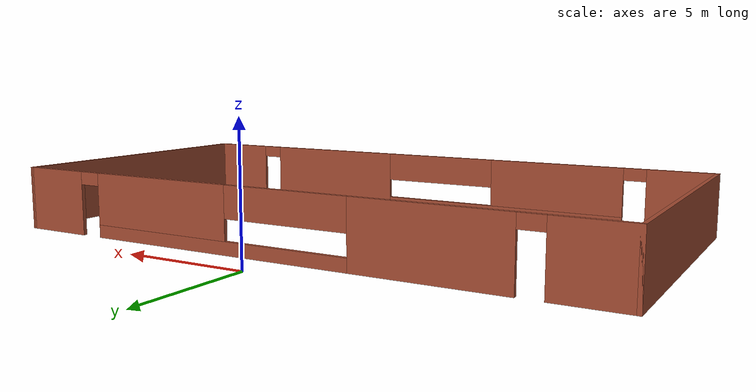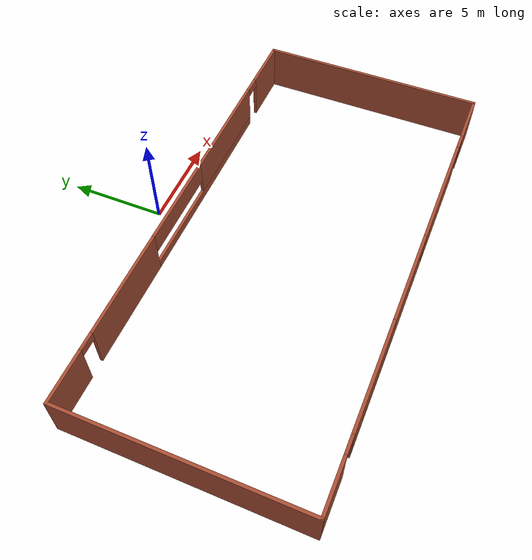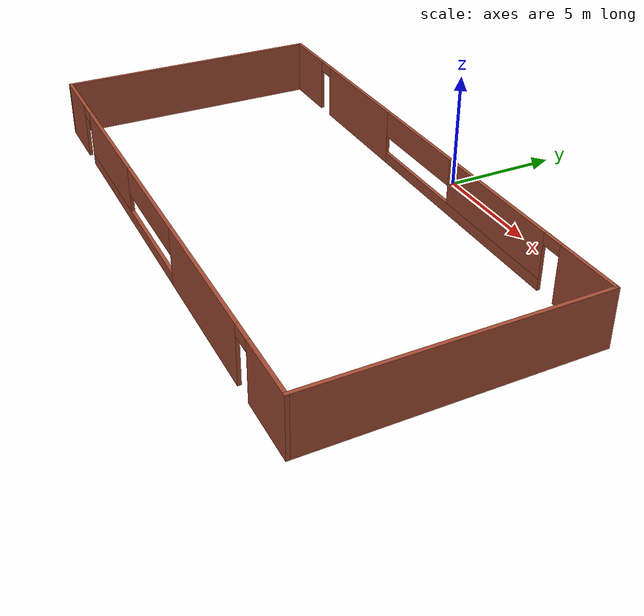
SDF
<?xml version='1.0'?>
<sdf version='1.6'>
  <model name='Building'>
    <pose frame=''>-0.123507 -7.53127 0 0 -0 0</pose>
    <link name='Wall_19'>
      <pose frame=''>0 5.925 0 0 -0 0</pose>
      <visual name='Wall_19_Visual_0'>
        <pose frame=''>-10.7783 0 1.25 0 -0 0</pose>
        <geometry>
          <box>
            <size>2.69331 0.15 2.5</size>
          </box>
        </geometry>
        <material>
          <script>
            <uri>file://media/materials/scripts/gazebo.material</uri>
            <name>Gazebo/Bricks</name>
          </script>
          <ambient>1 1 1 1</ambient>
        </material>
        <meta>
          <layer>0</layer>
        </meta>
      </visual>
      <collision name='Wall_19_Collision_0'>
        <geometry>
          <box>
            <size>2.69331 0.15 2.5</size>
          </box>
        </geometry>
        <pose frame=''>-10.7783 0 1.25 0 -0 0</pose>
      </collision>
      <visual name='Wall_19_Visual_1'>
        <pose frame=''>-5.70413 0 1.25 0 -0 0</pose>
        <geometry>
          <box>
            <size>5.65511 0.15 2.5</size>
          </box>
        </geometry>
        <material>
          <script>
            <uri>file://media/materials/scripts/gazebo.material</uri>
            <name>Gazebo/Bricks</name>
          </script>
          <ambient>1 1 1 1</ambient>
        </material>
        <meta>
          <layer>0</layer>
        </meta>
      </visual>
      <collision name='Wall_19_Collision_1'>
        <geometry>
          <box>
            <size>5.65511 0.15 2.5</size>
          </box>
        </geometry>
        <pose frame=''>-5.70413 0 1.25 0 -0 0</pose>
      </collision>
      <visual name='Wall_19_Visual_2'>
        <pose frame=''>10.6641 0 1.25 0 -0 0</pose>
        <geometry>
          <box>
            <size>2.92177 0.15 2.5</size>
          </box>
        </geometry>
        <material>
          <script>
            <uri>file://media/materials/scripts/gazebo.material</uri>
            <name>Gazebo/Bricks</name>
          </script>
          <ambient>1 1 1 1</ambient>
        </material>
        <meta>
          <layer>0</layer>
        </meta>
      </visual>
      <collision name='Wall_19_Collision_2'>
        <geometry>
          <box>
            <size>2.92177 0.15 2.5</size>
          </box>
        </geometry>
        <pose frame=''>10.6641 0 1.25 0 -0 0</pose>
      </collision>
      <visual name='Wall_19_Visual_3'>
        <pose frame=''>2.71333 0 0.25 0 -0 0</pose>
        <geometry>
          <box>
            <size>11.1798 0.15 0.5</size>
          </box>
        </geometry>
        <material>
          <script>
            <uri>file://media/materials/scripts/gazebo.material</uri>
            <name>Gazebo/Bricks</name>
          </script>
          <ambient>1 1 1 1</ambient>
        </material>
        <meta>
          <layer>0</layer>
        </meta>
      </visual>
      <collision name='Wall_19_Collision_3'>
        <geometry>
          <box>
            <size>11.1798 0.15 0.5</size>
          </box>
        </geometry>
        <pose frame=''>2.71333 0 0.25 0 -0 0</pose>
      </collision>
      <visual name='Wall_19_Visual_4'>
        <pose frame=''>5.21333 0 1.5 0 -0 0</pose>
        <geometry>
          <box>
            <size>6.17981 0.15 2</size>
          </box>
        </geometry>
        <material>
          <script>
            <uri>file://media/materials/scripts/gazebo.material</uri>
            <name>Gazebo/Bricks</name>
          </script>
          <ambient>1 1 1 1</ambient>
        </material>
        <meta>
          <layer>0</layer>
        </meta>
      </visual>
      <collision name='Wall_19_Collision_4'>
        <geometry>
          <box>
            <size>6.17981 0.15 2</size>
          </box>
        </geometry>
        <pose frame=''>5.21333 0 1.5 0 -0 0</pose>
      </collision>
      <visual name='Wall_19_Visual_5'>
        <pose frame=''>-0.376579 0 1.9 0 -0 0</pose>
        <geometry>
          <box>
            <size>5 0.15 1.2</size>
          </box>
        </geometry>
        <material>
          <script>
            <uri>file://media/materials/scripts/gazebo.material</uri>
            <name>Gazebo/Bricks</name>
          </script>
          <ambient>1 1 1 1</ambient>
        </material>
        <meta>
          <layer>0</layer>
        </meta>
      </visual>
      <collision name='Wall_19_Collision_5'>
        <geometry>
          <box>
            <size>5 0.15 1.2</size>
          </box>
        </geometry>
        <pose frame=''>-0.376579 0 1.9 0 -0 0</pose>
      </collision>
      <visual name='Wall_19_Visual_6'>
        <pose frame=''>-8.98169 0 2.25 0 -0 0</pose>
        <geometry>
          <box>
            <size>0.9 0.15 0.5</size>
          </box>
        </geometry>
        <material>
          <script>
            <uri>file://media/materials/scripts/gazebo.material</uri>
            <name>Gazebo/Bricks</name>
          </script>
          <ambient>1 1 1 1</ambient>
        </material>
        <meta>
          <layer>0</layer>
        </meta>
      </visual>
      <collision name='Wall_19_Collision_6'>
        <geometry>
          <box>
            <size>0.9 0.15 0.5</size>
          </box>
        </geometry>
        <pose frame=''>-8.98169 0 2.25 0 -0 0</pose>
      </collision>
      <visual name='Wall_19_Visual_7'>
        <pose frame=''>8.75323 0 2.25 0 -0 0</pose>
        <geometry>
          <box>
            <size>0.9 0.15 0.5</size>
          </box>
        </geometry>
        <material>
          <script>
            <uri>file://media/materials/scripts/gazebo.material</uri>
            <name>Gazebo/Bricks</name>
          </script>
          <ambient>1 1 1 1</ambient>
        </material>
        <meta>
          <layer>0</layer>
        </meta>
      </visual>
      <collision name='Wall_19_Collision_7'>
        <geometry>
          <box>
            <size>0.9 0.15 0.5</size>
          </box>
        </geometry>
        <pose frame=''>8.75323 0 2.25 0 -0 0</pose>
      </collision>
    </link>
    <link name='Wall_20'>
      <collision name='Wall_20_Collision'>
        <geometry>
          <box>
            <size>12 0.15 2.5</size>
          </box>
        </geometry>
        <pose frame=''>0 0 1.25 0 -0 0</pose>
      </collision>
      <visual name='Wall_20_Visual'>
        <pose frame=''>0 0 1.25 0 -0 0</pose>
        <geometry>
          <box>
            <size>12 0.15 2.5</size>
          </box>
        </geometry>
        <material>
          <script>
            <uri>file://media/materials/scripts/gazebo.material</uri>
            <name>Gazebo/Bricks</name>
          </script>
          <ambient>1 1 1 1</ambient>
        </material>
        <meta>
          <layer>0</layer>
        </meta>
      </visual>
      <pose frame=''>12.05 0 0 0 0 -1.5708</pose>
    </link>
    <link name='Wall_21'>
      <pose frame=''>0 -5.925 0 0 -0 3.14159</pose>
      <visual name='Wall_21_Visual_0'>
        <pose frame=''>-10.7166 0 1.25 0 -0 0</pose>
        <geometry>
          <box>
            <size>2.81683 0.15 2.5</size>
          </box>
        </geometry>
        <material>
          <script>
            <uri>file://media/materials/scripts/gazebo.material</uri>
            <name>Gazebo/Bricks</name>
          </script>
          <ambient>1 1 1 1</ambient>
        </material>
        <meta>
          <layer>0</layer>
        </meta>
      </visual>
      <collision name='Wall_21_Collision_0'>
        <geometry>
          <box>
            <size>2.81683 0.15 2.5</size>
          </box>
        </geometry>
        <pose frame=''>-10.7166 0 1.25 0 -0 0</pose>
      </collision>
      <visual name='Wall_21_Visual_1'>
        <pose frame=''>-5.2658 0 1.25 0 -0 0</pose>
        <geometry>
          <box>
            <size>6.28475 0.15 2.5</size>
          </box>
        </geometry>
        <material>
          <script>
            <uri>file://media/materials/scripts/gazebo.material</uri>
            <name>Gazebo/Bricks</name>
          </script>
          <ambient>1 1 1 1</ambient>
        </material>
        <meta>
          <layer>0</layer>
        </meta>
      </visual>
      <collision name='Wall_21_Collision_1'>
        <geometry>
          <box>
            <size>6.28475 0.15 2.5</size>
          </box>
        </geometry>
        <pose frame=''>-5.2658 0 1.25 0 -0 0</pose>
      </collision>
      <visual name='Wall_21_Visual_2'>
        <pose frame=''>10.7783 0 1.25 0 -0 0</pose>
        <geometry>
          <box>
            <size>2.69331 0.15 2.5</size>
          </box>
        </geometry>
        <material>
          <script>
            <uri>file://media/materials/scripts/gazebo.material</uri>
            <name>Gazebo/Bricks</name>
          </script>
          <ambient>1 1 1 1</ambient>
        </material>
        <meta>
          <layer>0</layer>
        </meta>
      </visual>
      <collision name='Wall_21_Collision_2'>
        <geometry>
          <box>
            <size>2.69331 0.15 2.5</size>
          </box>
        </geometry>
        <pose frame=''>10.7783 0 1.25 0 -0 0</pose>
      </collision>
      <visual name='Wall_21_Visual_3'>
        <pose frame=''>3.20413 0 0.25 0 -0 0</pose>
        <geometry>
          <box>
            <size>10.6551 0.15 0.5</size>
          </box>
        </geometry>
        <material>
          <script>
            <uri>file://media/materials/scripts/gazebo.material</uri>
            <name>Gazebo/Bricks</name>
          </script>
          <ambient>1 1 1 1</ambient>
        </material>
        <meta>
          <layer>0</layer>
        </meta>
      </visual>
      <collision name='Wall_21_Collision_3'>
        <geometry>
          <box>
            <size>10.6551 0.15 0.5</size>
          </box>
        </geometry>
        <pose frame=''>3.20413 0 0.25 0 -0 0</pose>
      </collision>
      <visual name='Wall_21_Visual_4'>
        <pose frame=''>5.70413 0 1.5 0 -0 0</pose>
        <geometry>
          <box>
            <size>5.65511 0.15 2</size>
          </box>
        </geometry>
        <material>
          <script>
            <uri>file://media/materials/scripts/gazebo.material</uri>
            <name>Gazebo/Bricks</name>
          </script>
          <ambient>1 1 1 1</ambient>
        </material>
        <meta>
          <layer>0</layer>
        </meta>
      </visual>
      <collision name='Wall_21_Collision_4'>
        <geometry>
          <box>
            <size>5.65511 0.15 2</size>
          </box>
        </geometry>
        <pose frame=''>5.70413 0 1.5 0 -0 0</pose>
      </collision>
      <visual name='Wall_21_Visual_5'>
        <pose frame=''>0.376579 0 1.9 0 -0 0</pose>
        <geometry>
          <box>
            <size>5 0.15 1.2</size>
          </box>
        </geometry>
        <material>
          <script>
            <uri>file://media/materials/scripts/gazebo.material</uri>
            <name>Gazebo/Bricks</name>
          </script>
          <ambient>1 1 1 1</ambient>
        </material>
        <meta>
          <layer>0</layer>
        </meta>
      </visual>
      <collision name='Wall_21_Collision_5'>
        <geometry>
          <box>
            <size>5 0.15 1.2</size>
          </box>
        </geometry>
        <pose frame=''>0.376579 0 1.9 0 -0 0</pose>
      </collision>
      <visual name='Wall_21_Visual_6'>
        <pose frame=''>-8.85817 0 2.25 0 -0 0</pose>
        <geometry>
          <box>
            <size>0.9 0.15 0.5</size>
          </box>
        </geometry>
        <material>
          <script>
            <uri>file://media/materials/scripts/gazebo.material</uri>
            <name>Gazebo/Bricks</name>
          </script>
          <ambient>1 1 1 1</ambient>
        </material>
        <meta>
          <layer>0</layer>
        </meta>
      </visual>
      <collision name='Wall_21_Collision_6'>
        <geometry>
          <box>
            <size>0.9 0.15 0.5</size>
          </box>
        </geometry>
        <pose frame=''>-8.85817 0 2.25 0 -0 0</pose>
      </collision>
      <visual name='Wall_21_Visual_7'>
        <pose frame=''>8.98169 0 2.25 0 -0 0</pose>
        <geometry>
          <box>
            <size>0.9 0.15 0.5</size>
          </box>
        </geometry>
        <material>
          <script>
            <uri>file://media/materials/scripts/gazebo.material</uri>
            <name>Gazebo/Bricks</name>
          </script>
          <ambient>1 1 1 1</ambient>
        </material>
        <meta>
          <layer>0</layer>
        </meta>
      </visual>
      <collision name='Wall_21_Collision_7'>
        <geometry>
          <box>
            <size>0.9 0.15 0.5</size>
          </box>
        </geometry>
        <pose frame=''>8.98169 0 2.25 0 -0 0</pose>
      </collision>
    </link>
    <link name='Wall_22'>
      <collision name='Wall_22_Collision'>
        <geometry>
          <box>
            <size>12 0.15 2.5</size>
          </box>
        </geometry>
        <pose frame=''>0 0 1.25 0 -0 0</pose>
      </collision>
      <visual name='Wall_22_Visual'>
        <pose frame=''>0 0 1.25 0 -0 0</pose>
        <geometry>
          <box>
            <size>12 0.15 2.5</size>
          </box>
        </geometry>
        <material>
          <script>
            <uri>file://media/materials/scripts/gazebo.material</uri>
            <name>Gazebo/Bricks</name>
          </script>
          <ambient>1 1 1 1</ambient>
        </material>
        <meta>
          <layer>0</layer>
        </meta>
      </visual>
      <pose frame=''>-12.05 0 0 0 -0 1.5708</pose>
    </link>
    <static>1</static>
  </model>
</sdf>
